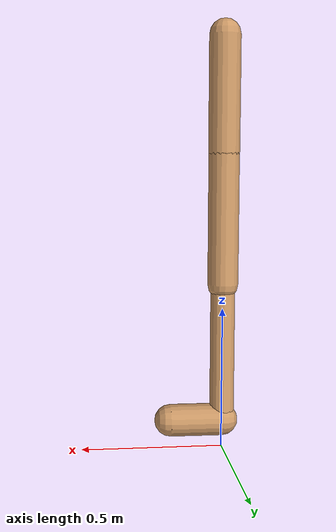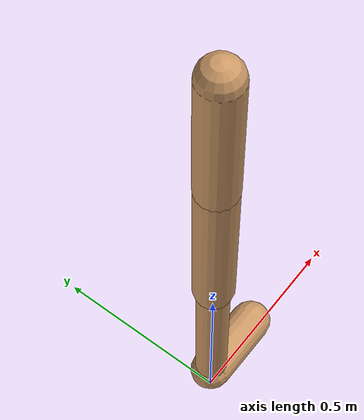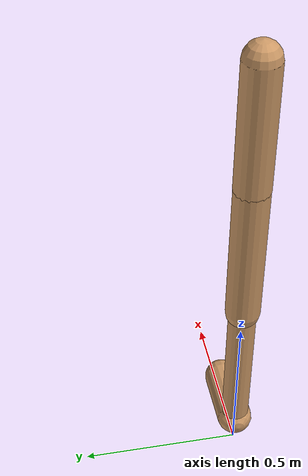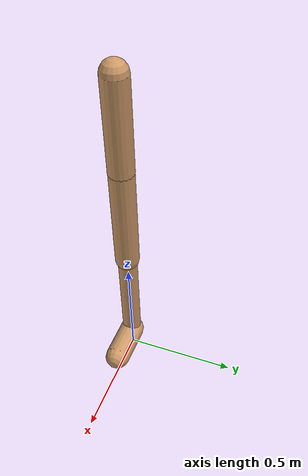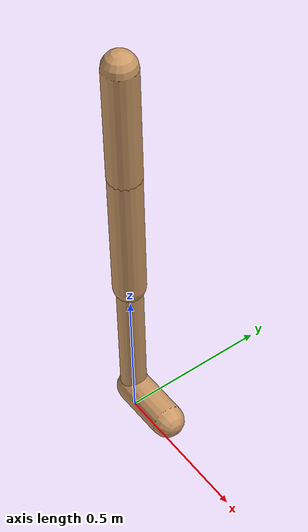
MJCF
<mujoco model="walker2d">
  <compiler angle="degree" coordinate="global" inertiafromgeom="true" />
  <default>
    <joint armature="0.01" damping=".1" limited="true" />
    <geom conaffinity="0" condim="3" contype="1" density="1000" friction="0.8 .1 .1" rgba="0.8 0.6 .4 1" />
  </default>
  <option integrator="RK4" timestep="0.002" />
  <worldbody>

    <body name="torso" pos="0 0 0.024789842937127996">
      <joint armature="0" axis="1 0 0" damping="0" limited="false" name="ignorex" pos="0 0 0" stiffness="0" type="slide" />
      <joint armature="0" axis="0 0 1" damping="0" limited="false" name="ignorez" pos="0 0 0" ref="1.25" stiffness="0" type="slide" />
      <joint armature="0" axis="0 1 0" damping="0" limited="false" name="ignorey" pos="0 0 0" stiffness="0" type="hinge" />
      <geom fromto="0 0 1.45 0 0 1.05" name="torso_geom" size="0.05473029056386991" type="capsule" />
      <body name="thigh">
        <joint axis="0 -1 0" name="thigh_joint" pos="0 0 1.05" range="-150 0" type="hinge" />
        <geom fromto="0.0 0.0 1.05 0.0 0.0 0.5882574428192552" name="thigh_geom" size="0.05378534168974081" type="capsule" />
        <body name="leg" pos="0.0 0.0 -0.011742557180744795">
          <joint axis="0 -1 0" name="leg_joint" pos="0 0 0.6" range="-150 0" type="hinge" />
          <geom fromto="0.0 0.0 0.6 0.0 0.0 0.08695271424361685" name="leg_geom" size="0.04302827335179265" type="capsule" />
          <body name="foot" pos="0.0 0.0 -0.013047285756383156">
            <joint axis="0 -1 0" name="foot_joint" pos="0 0 0.1" range="-45 45" type="hinge" />
            <geom fromto="0.0 0.0 0.1 0.18493196643867896 0.0 0.1" name="foot_geom" size="0.056242198543846454" type="capsule" />
          </body>
        </body>
      </body>

      <body name="thigh_left">
        <joint axis="0 -1 0" name="thigh_left_joint" pos="0 0 1.05" range="-150 0" type="hinge" />
        <geom fromto="0.0 0.0 1.05 0.0 0.0 0.5882574428192552" name="thigh_left_geom" rgba=".7 .3 .6 1" size="0.05378534168974081" type="capsule" />
        <body name="leg_left" pos="0.0 0.0 -0.011742557180744795">
          <joint axis="0 -1 0" name="leg_left_joint" pos="0 0 0.6" range="-150 0" type="hinge" />
          <geom fromto="0.0 0.0 0.6 0.0 0.0 0.08695271424361685" name="leg_left_geom" rgba=".7 .3 .6 1" size="0.04302827335179265" type="capsule" />
          <body name="foot_left" pos="0.0 0.0 -0.013047285756383156">
            <joint axis="0 -1 0" name="foot_left_joint" pos="0 0 0.1" range="-45 45" type="hinge" />
            <geom fromto="0.0 0.0 0.1 0.18493196643867896 0.0 0.1" name="foot_left_geom" rgba=".7 .3 .6 1" size="0.056242198543846454" type="capsule" />
          </body>
        </body>
      </body>
    </body>
  </worldbody>
  <actuator>

    <motor ctrllimited="true" ctrlrange="-1.0 1.0" gear="100" joint="thigh_joint" />
    <motor ctrllimited="true" ctrlrange="-1.0 1.0" gear="100" joint="leg_joint" />
    <motor ctrllimited="true" ctrlrange="-1.0 1.0" gear="100" joint="foot_joint" />
    <motor ctrllimited="true" ctrlrange="-1.0 1.0" gear="100" joint="thigh_left_joint" />
    <motor ctrllimited="true" ctrlrange="-1.0 1.0" gear="100" joint="leg_left_joint" />
    <motor ctrllimited="true" ctrlrange="-1.0 1.0" gear="100" joint="foot_left_joint" />

  </actuator>
</mujoco>
